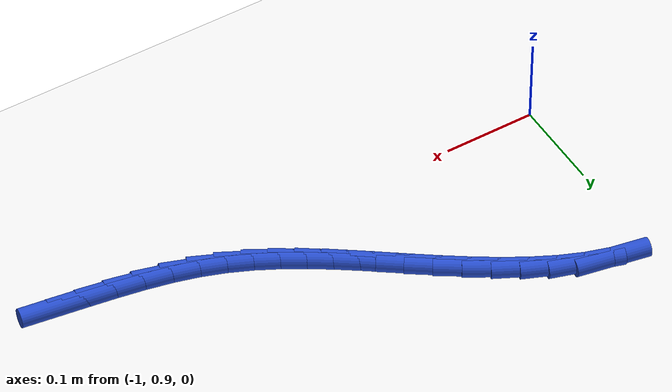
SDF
<sdf version="1.6">
 <world name="default">
  <model name="ground_plane">
   <static>1</static>
   <link name="link">
    <collision name="collision">
     <geometry><plane><normal>0 0 1</normal><size>100 100</size></plane></geometry>
     <surface><friction><ode><mu>100</mu><mu2>50</mu2></ode></friction></surface>
    </collision>
    <visual name="visual">
     <cast_shadows>0</cast_shadows>
     <geometry><plane><normal>0 0 1</normal><size>100 100</size></plane></geometry>
     <material>
      <script><uri>file://media/materials/scripts/gazebo.material</uri><name>Gazebo/WhiteGlow</name></script>
     </material>
    </visual>
   </link>
  </model>
  <model name="line">
   <link name="link_40">
    <pose>-0.4528904128914413 0.8846940738772284 0.01 0 1.57 -0.14264688297909003</pose>
    <collision name="collision">
     <geometry><cylinder><radius>0.01</radius><length>0.08</length></cylinder></geometry>
    </collision>
    <visual name="visual">
     <material>
      <script><name>Gazebo/Blue</name><uri>file://media/materials/scripts/gazebo.material</uri></script>
     </material>
     <geometry><cylinder><radius>0.01</radius><length>0.08</length></cylinder></geometry>
    </visual>
   </link>
   <link name="link_41">
    <pose>-0.48268576574338456 0.8889733526505953 0.01 0 1.57 -0.1497967404922965</pose>
    <collision name="collision">
     <geometry><cylinder><radius>0.01</radius><length>0.08</length></cylinder></geometry>
    </collision>
    <visual name="visual">
     <material>
      <script><name>Gazebo/Blue</name><uri>file://media/materials/scripts/gazebo.material</uri></script>
     </material>
     <geometry><cylinder><radius>0.01</radius><length>0.08</length></cylinder></geometry>
    </visual>
   </link>
   <link name="link_42">
    <pose>-0.5125595465491654 0.8934821223889188 0.01 0 1.57 -0.17256996178403525</pose>
    <collision name="collision">
     <geometry><cylinder><radius>0.01</radius><length>0.08</length></cylinder></geometry>
    </collision>
    <visual name="visual">
     <material>
      <script><name>Gazebo/Blue</name><uri>file://media/materials/scripts/gazebo.material</uri></script>
     </material>
     <geometry><cylinder><radius>0.01</radius><length>0.08</length></cylinder></geometry>
    </visual>
   </link>
   <link name="link_43">
    <pose>-0.5420964251304792 0.8986305091427046 0.01 0 1.57 -0.21208929926445858</pose>
    <collision name="collision">
     <geometry><cylinder><radius>0.01</radius><length>0.08</length></cylinder></geometry>
    </collision>
    <visual name="visual">
     <material>
      <script><name>Gazebo/Blue</name><uri>file://media/materials/scripts/gazebo.material</uri></script>
     </material>
     <geometry><cylinder><radius>0.01</radius><length>0.08</length></cylinder></geometry>
    </visual>
   </link>
   <link name="link_44">
    <pose>-0.570881071309021 0.9048286389624587 0.01 0 1.57 -0.2704958997921498</pose>
    <collision name="collision">
     <geometry><cylinder><radius>0.01</radius><length>0.08</length></cylinder></geometry>
    </collision>
    <visual name="visual">
     <material>
      <script><name>Gazebo/Blue</name><uri>file://media/materials/scripts/gazebo.material</uri></script>
     </material>
     <geometry><cylinder><radius>0.01</radius><length>0.08</length></cylinder></geometry>
    </visual>
   </link>
   <link name="link_45">
    <pose>-0.5984981549372819 0.912486637869676 0.01 0 1.57 -0.3457831768912361</pose>
    <collision name="collision">
     <geometry><cylinder><radius>0.01</radius><length>0.08</length></cylinder></geometry>
    </collision>
    <visual name="visual">
     <material>
      <script><name>Gazebo/Blue</name><uri>file://media/materials/scripts/gazebo.material</uri></script>
     </material>
     <geometry><cylinder><radius>0.01</radius><length>0.08</length></cylinder></geometry>
    </visual>
   </link>
   <link name="link_46">
    <pose>-0.6246467507662243 0.9219068555345604 0.01 0 1.57 -0.41914388112311046</pose>
    <collision name="collision">
     <geometry><cylinder><radius>0.01</radius><length>0.08</length></cylinder></geometry>
    </collision>
    <visual name="visual">
     <material>
      <script><name>Gazebo/Blue</name><uri>file://media/materials/scripts/gazebo.material</uri></script>
     </material>
     <geometry><cylinder><radius>0.01</radius><length>0.08</length></cylinder></geometry>
    </visual>
   </link>
   <link name="link_47">
    <pose>-0.6494747182112038 0.9329688592614362 0.01 0 1.57 -0.4835445485795554</pose>
    <collision name="collision">
     <geometry><cylinder><radius>0.01</radius><length>0.08</length></cylinder></geometry>
    </collision>
    <visual name="visual">
     <material>
      <script><name>Gazebo/Blue</name><uri>file://media/materials/scripts/gazebo.material</uri></script>
     </material>
     <geometry><cylinder><radius>0.01</radius><length>0.08</length></cylinder></geometry>
    </visual>
   </link>
   <link name="link_48">
    <pose>-0.6732399466000702 0.945448561505404 0.01 0 1.57 -0.5371172157268679</pose>
    <collision name="collision">
     <geometry><cylinder><radius>0.01</radius><length>0.08</length></cylinder></geometry>
    </collision>
    <visual name="visual">
     <material>
      <script><name>Gazebo/Blue</name><uri>file://media/materials/scripts/gazebo.material</uri></script>
     </material>
     <geometry><cylinder><radius>0.01</radius><length>0.08</length></cylinder></geometry>
    </visual>
   </link>
   <link name="link_49">
    <pose>-0.6962003252606745 0.9591218747215653 0.01 0 1.57 -0.5786962889239656</pose>
    <collision name="collision">
     <geometry><cylinder><radius>0.01</radius><length>0.08</length></cylinder></geometry>
    </collision>
    <visual name="visual">
     <material>
      <script><name>Gazebo/Blue</name><uri>file://media/materials/scripts/gazebo.material</uri></script>
     </material>
     <geometry><cylinder><radius>0.01</radius><length>0.08</length></cylinder></geometry>
    </visual>
   </link>
   <link name="link_50">
    <pose>-0.7186137435208662 0.9737647113650202 0.01 0 1.57 -0.6077234779325693</pose>
    <collision name="collision">
     <geometry><cylinder><radius>0.01</radius><length>0.08</length></cylinder></geometry>
    </collision>
    <visual name="visual">
     <material>
      <script><name>Gazebo/Blue</name><uri>file://media/materials/scripts/gazebo.material</uri></script>
     </material>
     <geometry><cylinder><radius>0.01</radius><length>0.08</length></cylinder></geometry>
    </visual>
   </link>
   <link name="link_51">
    <pose>-0.7407380907084953 0.9891529838908697 0.01 0 1.57 -0.6240988171783313</pose>
    <collision name="collision">
     <geometry><cylinder><radius>0.01</radius><length>0.08</length></cylinder></geometry>
    </collision>
    <visual name="visual">
     <material>
      <script><name>Gazebo/Blue</name><uri>file://media/materials/scripts/gazebo.material</uri></script>
     </material>
     <geometry><cylinder><radius>0.01</radius><length>0.08</length></cylinder></geometry>
    </visual>
   </link>
   <link name="link_52">
    <pose>-0.7628312561514121 1.0050626047542146 0.01 0 1.57 -0.6280412069094072</pose>
    <collision name="collision">
     <geometry><cylinder><radius>0.01</radius><length>0.08</length></cylinder></geometry>
    </collision>
    <visual name="visual">
     <material>
      <script><name>Gazebo/Blue</name><uri>file://media/materials/scripts/gazebo.material</uri></script>
     </material>
     <geometry><cylinder><radius>0.01</radius><length>0.08</length></cylinder></geometry>
    </visual>
   </link>
   <link name="link_53">
    <pose>-0.7851511291774668 1.0212694864101555 0.01 0 1.57 -0.619992401983801</pose>
    <collision name="collision">
     <geometry><cylinder><radius>0.01</radius><length>0.08</length></cylinder></geometry>
    </collision>
    <visual name="visual">
     <material>
      <script><name>Gazebo/Blue</name><uri>file://media/materials/scripts/gazebo.material</uri></script>
     </material>
     <geometry><cylinder><radius>0.01</radius><length>0.08</length></cylinder></geometry>
    </visual>
   </link>
   <link name="link_54">
    <pose>-0.8079555991145095 1.0375495413137934 0.01 0 1.57 -0.6005393554842274</pose>
    <collision name="collision">
     <geometry><cylinder><radius>0.01</radius><length>0.08</length></cylinder></geometry>
    </collision>
    <visual name="visual">
     <material>
      <script><name>Gazebo/Blue</name><uri>file://media/materials/scripts/gazebo.material</uri></script>
     </material>
     <geometry><cylinder><radius>0.01</radius><length>0.08</length></cylinder></geometry>
    </visual>
   </link>
   <link name="link_55">
    <pose>-0.8314730181539275 1.0536573012162709 0.01 0 1.57 -0.5697730747402984</pose>
    <collision name="collision">
     <geometry><cylinder><radius>0.01</radius><length>0.08</length></cylinder></geometry>
    </collision>
    <visual name="visual">
     <material>
      <script><name>Gazebo/Blue</name><uri>file://media/materials/scripts/gazebo.material</uri></script>
     </material>
     <geometry><cylinder><radius>0.01</radius><length>0.08</length></cylinder></geometry>
    </visual>
   </link>
   <link name="link_56">
    <pose>-0.855684706038821 1.0691684813591624 0.01 0 1.57 -0.5267310126437706</pose>
    <collision name="collision">
     <geometry><cylinder><radius>0.01</radius><length>0.08</length></cylinder></geometry>
    </collision>
    <visual name="visual">
     <material>
      <script><name>Gazebo/Blue</name><uri>file://media/materials/scripts/gazebo.material</uri></script>
     </material>
     <geometry><cylinder><radius>0.01</radius><length>0.08</length></cylinder></geometry>
    </visual>
   </link>
   <link name="link_57">
    <pose>-0.8804489248943463 1.083569720695204 0.01 0 1.57 -0.469674578996793</pose>
    <collision name="collision">
     <geometry><cylinder><radius>0.01</radius><length>0.08</length></cylinder></geometry>
    </collision>
    <visual name="visual">
     <material>
      <script><name>Gazebo/Blue</name><uri>file://media/materials/scripts/gazebo.material</uri></script>
     </material>
     <geometry><cylinder><radius>0.01</radius><length>0.08</length></cylinder></geometry>
    </visual>
   </link>
   <link name="link_58">
    <pose>-0.9056230370623267 1.0963470068614178 0.01 0 1.57 -0.39608823904862245</pose>
    <collision name="collision">
     <geometry><cylinder><radius>0.01</radius><length>0.08</length></cylinder></geometry>
    </collision>
    <visual name="visual">
     <material>
      <script><name>Gazebo/Blue</name><uri>file://media/materials/scripts/gazebo.material</uri></script>
     </material>
     <geometry><cylinder><radius>0.01</radius><length>0.08</length></cylinder></geometry>
    </visual>
   </link>
   <link name="link_59">
    <pose>-0.9310644048845866 1.106986327494828 0.01 0 1.57 -0.30281260594155407</pose>
    <collision name="collision">
     <geometry><cylinder><radius>0.01</radius><length>0.08</length></cylinder></geometry>
    </collision>
    <visual name="visual">
     <material>
      <script><name>Gazebo/Blue</name><uri>file://media/materials/scripts/gazebo.material</uri></script>
     </material>
     <geometry><cylinder><radius>0.01</radius><length>0.08</length></cylinder></geometry>
    </visual>
   </link>
   <link name="link_60">
    <pose>-0.9566303907029502 1.114973670232458 0.01 0 1.57 -0.1865239989071952</pose>
    <collision name="collision">
     <geometry><cylinder><radius>0.01</radius><length>0.08</length></cylinder></geometry>
    </collision>
    <visual name="visual">
     <material>
      <script><name>Gazebo/Blue</name><uri>file://media/materials/scripts/gazebo.material</uri></script>
     </material>
     <geometry><cylinder><radius>0.01</radius><length>0.08</length></cylinder></geometry>
    </visual>
   </link>
  </model>
 </world>
</sdf>
